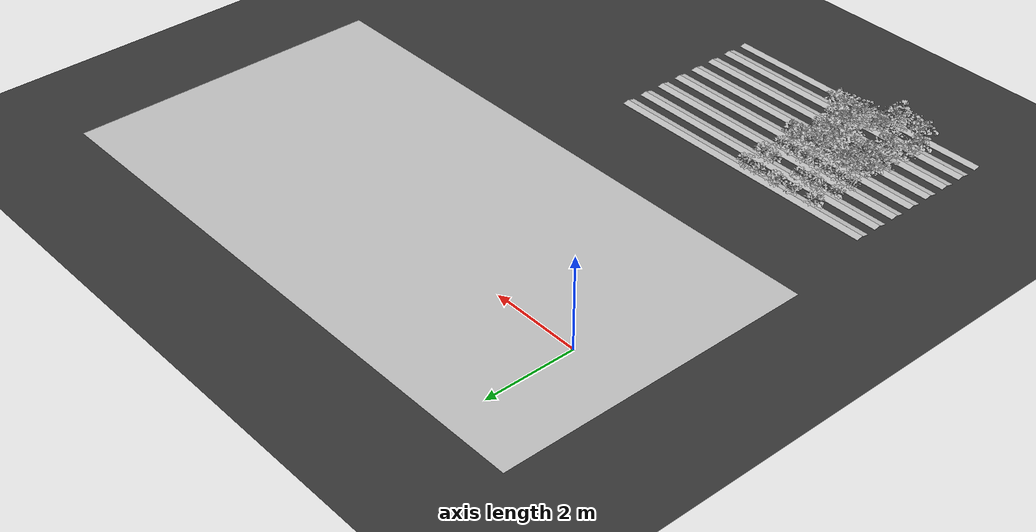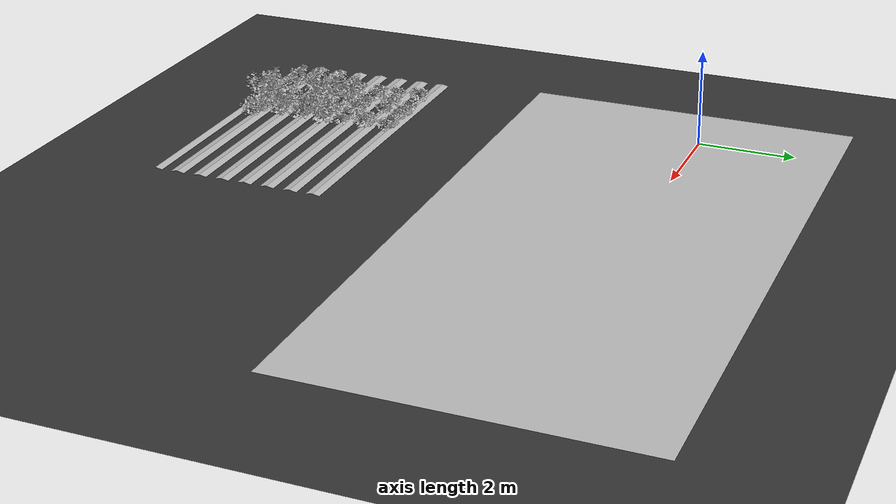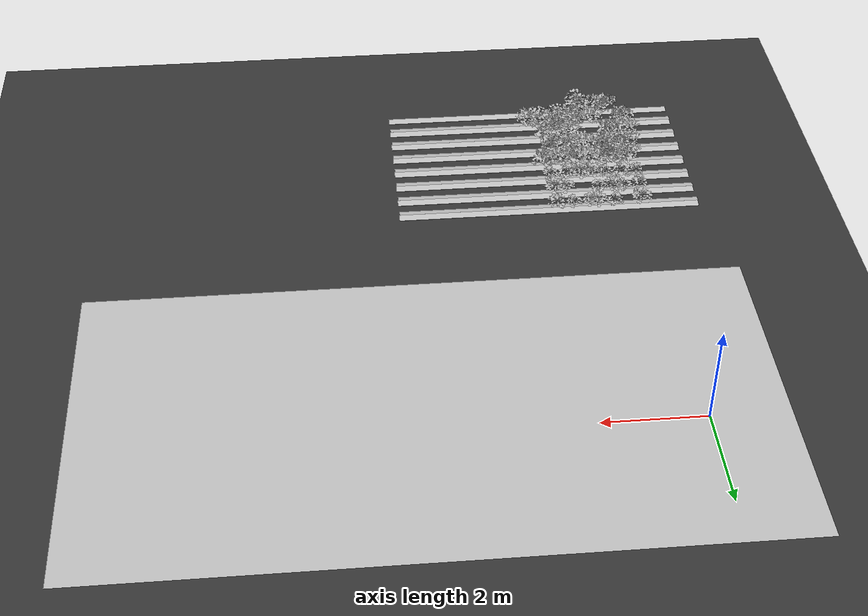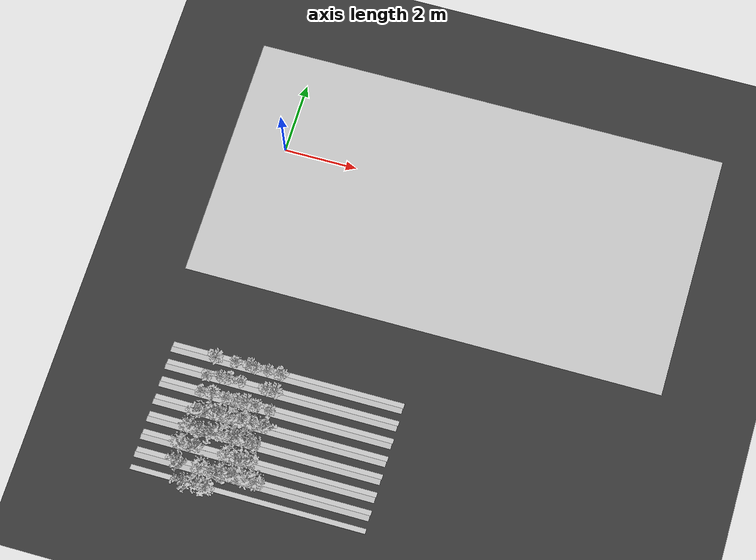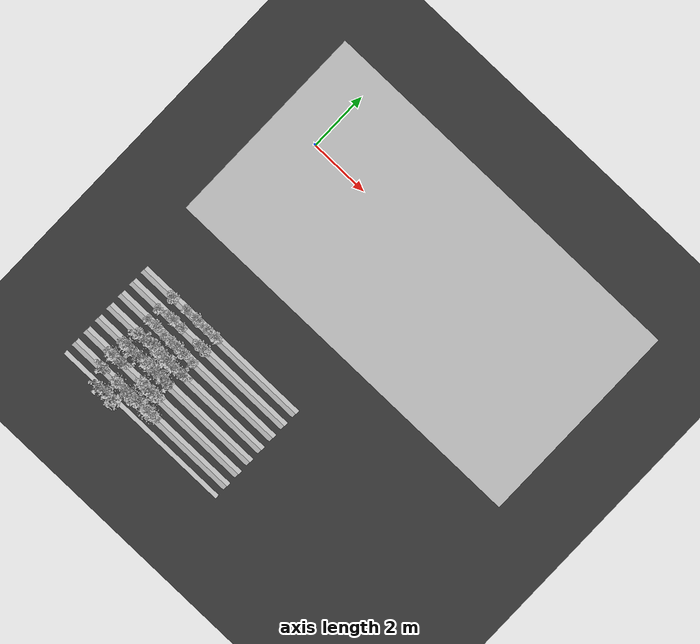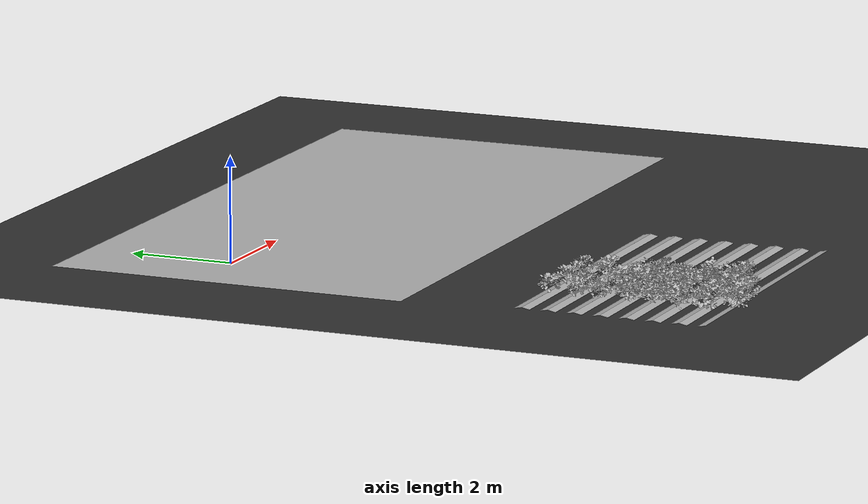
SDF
<sdf version="1.7">
 <world name="default">
  <model name="ground_plane">
   <static>1</static>
   <link name="link">
    <collision name="collision">
     <geometry><plane><normal>0 0 1</normal><size>100 100</size></plane></geometry>
     <surface>
      <contact><collide_bitmask>65535</collide_bitmask></contact>
      <friction><ode><mu>100</mu><mu2>50</mu2></ode></friction>
     </surface>
    </collision>
    <visual name="visual">
     <cast_shadows>0</cast_shadows>
     <geometry><plane><normal>0 0 1</normal><size>100 100</size></plane></geometry>
     <material>
      <ambient>0.2 0.2 0.2 1.0</ambient>
      <diffuse>0.2 0.2 0.2 1.0</diffuse>
      <specular>0.2 0.2 0.2 1.0</specular>
      <emissive>0.2 0.2 0.2 1.0</emissive>
     </material>
    </visual>
   </link>
  </model>
  <model name="ground">
   <pose>5 -0.5 0.01  3.141592654 0 0</pose>
   <static>true</static>
   <link name="body">
    <visual name="visual">
     <cast_shadows>0</cast_shadows>
     <geometry>
      <mesh><uri>file:///home/ifcosta/final_ws/src/cnn_line/worlds/models/ground.obj</uri></mesh>
     </geometry>
    </visual>
   </link>
  </model>
  <model name="plt_20000">
   <pose>-0.0155 -7.25 0.0139 0.0 0.0 -1.8722</pose>
   <static>true</static>
   <link name="body">
    <visual name="visual">
     <geometry>
      <mesh><uri>file:///home/ifcosta/final_ws/src/cnn_line/worlds/models/plant20.obj</uri></mesh>
     </geometry>
    </visual>
   </link>
  </model>
  <model name="plt_20001">
   <pose>0.29 -7.23 0.0123 0.0 0.0 0.9943</pose>
   <static>true</static>
   <link name="body">
    <visual name="visual">
     <geometry>
      <mesh><uri>file:///home/ifcosta/final_ws/src/cnn_line/worlds/models/plant21.obj</uri></mesh>
     </geometry>
    </visual>
   </link>
  </model>
  <model name="plt_20002">
   <pose>0.662 -7.25 0.0135 0.0 0.0 -1.072</pose>
   <static>true</static>
   <link name="body">
    <visual name="visual">
     <geometry>
      <mesh><uri>file:///home/ifcosta/final_ws/src/cnn_line/worlds/models/plant20.obj</uri></mesh>
     </geometry>
    </visual>
   </link>
  </model>
  <model name="plt_20003">
   <pose>0.961 -7.27 0.0196 0.0 0.0 0.7189</pose>
   <static>true</static>
   <link name="body">
    <visual name="visual">
     <geometry>
      <mesh><uri>file:///home/ifcosta/final_ws/src/cnn_line/worlds/models/plant21.obj</uri></mesh>
     </geometry>
    </visual>
   </link>
  </model>
  <model name="plt_20004">
   <pose>1.19 -7.24 0.012 0.0 0.0 0.95856</pose>
   <static>true</static>
   <link name="body">
    <visual name="visual">
     <geometry>
      <mesh><uri>file:///home/ifcosta/final_ws/src/cnn_line/worlds/models/plant22.obj</uri></mesh>
     </geometry>
    </visual>
   </link>
  </model>
  <model name="plt_20005">
   <pose>1.48 -7.28 0.0138 0.0 0.0 1.5511</pose>
   <static>true</static>
   <link name="body">
    <visual name="visual">
     <geometry>
      <mesh><uri>file:///home/ifcosta/final_ws/src/cnn_line/worlds/models/plant21.obj</uri></mesh>
     </geometry>
    </visual>
   </link>
  </model>
  <model name="plt_20006">
   <pose>1.84 -7.27 0.0161 0.0 0.0 -1.0882</pose>
   <static>true</static>
   <link name="body">
    <visual name="visual">
     <geometry>
      <mesh><uri>file:///home/ifcosta/final_ws/src/cnn_line/worlds/models/plant20.obj</uri></mesh>
     </geometry>
    </visual>
   </link>
  </model>
  <model name="slope_1034">
   <pose>2.0 -7.25 -0.005 0.0 0.0 0.0</pose>
   <static>true</static>
   <link name="body">
    <visual name="visual">
     <geometry>
      <mesh><uri>file:///home/ifcosta/final_ws/src/cnn_line/worlds/models/slope.obj</uri></mesh>
     </geometry>
    </visual>
   </link>
  </model>
  <model name="slope_1134">
   <pose>2.0 -7.25 -0.005 0.0 0.0 3.1416</pose>
   <static>true</static>
   <link name="body">
    <visual name="visual">
     <geometry>
      <mesh><uri>file:///home/ifcosta/final_ws/src/cnn_line/worlds/models/slope.obj</uri></mesh>
     </geometry>
    </visual>
   </link>
  </model>
  <model name="plt_20034">
   <pose>-0.0142 -6.82 0.0136 0.0 0.0 -1.4093</pose>
   <static>true</static>
   <link name="body">
    <visual name="visual">
     <geometry>
      <mesh><uri>file:///home/ifcosta/final_ws/src/cnn_line/worlds/models/plant20.obj</uri></mesh>
     </geometry>
    </visual>
   </link>
  </model>
  <model name="plt_20035">
   <pose>0.339 -6.73 0.0136 0.0 0.0 -0.78925</pose>
   <static>true</static>
   <link name="body">
    <visual name="visual">
     <geometry>
      <mesh><uri>file:///home/ifcosta/final_ws/src/cnn_line/worlds/models/plant20.obj</uri></mesh>
     </geometry>
    </visual>
   </link>
  </model>
  <model name="plt_30035">
   <pose>0.339 -9.73 0.0136 0.0 0.0 0.74008</pose>
   <static>true</static>
   <link name="body">
    <visual name="visual">
     <geometry>
      <mesh><uri>file:///home/ifcosta/final_ws/src/cnn_line/worlds/models/plant33.obj</uri></mesh>
     </geometry>
    </visual>
   </link>
  </model>
  <model name="plt_20036">
   <pose>0.577 -6.73 0.0141 0.0 0.0 -1.4953</pose>
   <static>true</static>
   <link name="body">
    <visual name="visual">
     <geometry>
      <mesh><uri>file:///home/ifcosta/final_ws/src/cnn_line/worlds/models/plant21.obj</uri></mesh>
     </geometry>
    </visual>
   </link>
  </model>
  <model name="plt_30036">
   <pose>0.577 -9.73 0.0141 0.0 0.0 -0.1089</pose>
   <static>true</static>
   <link name="body">
    <visual name="visual">
     <geometry>
      <mesh><uri>file:///home/ifcosta/final_ws/src/cnn_line/worlds/models/plant35.obj</uri></mesh>
     </geometry>
    </visual>
   </link>
  </model>
  <model name="plt_20037">
   <pose>0.902 -6.74 0.0154 0.0 0.0 1.406</pose>
   <static>true</static>
   <link name="body">
    <visual name="visual">
     <geometry>
      <mesh><uri>file:///home/ifcosta/final_ws/src/cnn_line/worlds/models/plant20.obj</uri></mesh>
     </geometry>
    </visual>
   </link>
  </model>
  <model name="plt_30037">
   <pose>0.902 -9.74 0.0154 0.0 0.0 -1.074</pose>
   <static>true</static>
   <link name="body">
    <visual name="visual">
     <geometry>
      <mesh><uri>file:///home/ifcosta/final_ws/src/cnn_line/worlds/models/plant36.obj</uri></mesh>
     </geometry>
    </visual>
   </link>
  </model>
  <model name="plt_20039">
   <pose>1.59 -6.76 0.0153 0.0 0.0 0.21965</pose>
   <static>true</static>
   <link name="body">
    <visual name="visual">
     <geometry>
      <mesh><uri>file:///home/ifcosta/final_ws/src/cnn_line/worlds/models/plant21.obj</uri></mesh>
     </geometry>
    </visual>
   </link>
  </model>
  <model name="plt_20040">
   <pose>1.82 -6.75 0.0142 0.0 0.0 0.78952</pose>
   <static>true</static>
   <link name="body">
    <visual name="visual">
     <geometry>
      <mesh><uri>file:///home/ifcosta/final_ws/src/cnn_line/worlds/models/plant22.obj</uri></mesh>
     </geometry>
    </visual>
   </link>
  </model>
  <model name="slope_1068">
   <pose>2.0 -6.75 -0.005 0.0 0.0 0.0</pose>
   <static>true</static>
   <link name="body">
    <visual name="visual">
     <geometry>
      <mesh><uri>file:///home/ifcosta/final_ws/src/cnn_line/worlds/models/slope.obj</uri></mesh>
     </geometry>
    </visual>
   </link>
  </model>
  <model name="slope_1168">
   <pose>2.0 -6.75 -0.005 0.0 0.0 3.1416</pose>
   <static>true</static>
   <link name="body">
    <visual name="visual">
     <geometry>
      <mesh><uri>file:///home/ifcosta/final_ws/src/cnn_line/worlds/models/slope.obj</uri></mesh>
     </geometry>
    </visual>
   </link>
  </model>
  <model name="slope_1568">
   <pose>2.0 -9.75 -0.005 0.0 0.0 3.1416</pose>
   <static>true</static>
   <link name="body">
    <visual name="visual">
     <geometry>
      <mesh><uri>file:///home/ifcosta/final_ws/src/cnn_line/worlds/models/slope.obj</uri></mesh>
     </geometry>
    </visual>
   </link>
  </model>
  <model name="plt_20068">
   <pose>0.0498 -6.26 0.0142 0.0 0.0 0.49213</pose>
   <static>true</static>
   <link name="body">
    <visual name="visual">
     <geometry>
      <mesh><uri>file:///home/ifcosta/final_ws/src/cnn_line/worlds/models/plant22.obj</uri></mesh>
     </geometry>
    </visual>
   </link>
  </model>
  <model name="plt_30068">
   <pose>0.0498 -9.26 0.0142 0.0 0.0 0.35871</pose>
   <static>true</static>
   <link name="body">
    <visual name="visual">
     <geometry>
      <mesh><uri>file:///home/ifcosta/final_ws/src/cnn_line/worlds/models/plant33.obj</uri></mesh>
     </geometry>
    </visual>
   </link>
  </model>
  <model name="plt_20070">
   <pose>0.612 -6.26 0.0137 0.0 0.0 0.57161</pose>
   <static>true</static>
   <link name="body">
    <visual name="visual">
     <geometry>
      <mesh><uri>file:///home/ifcosta/final_ws/src/cnn_line/worlds/models/plant20.obj</uri></mesh>
     </geometry>
    </visual>
   </link>
  </model>
  <model name="plt_30070">
   <pose>0.612 -9.26 0.0137 0.0 0.0 -1.3715</pose>
   <static>true</static>
   <link name="body">
    <visual name="visual">
     <geometry>
      <mesh><uri>file:///home/ifcosta/final_ws/src/cnn_line/worlds/models/plant35.obj</uri></mesh>
     </geometry>
    </visual>
   </link>
  </model>
  <model name="plt_20071">
   <pose>0.981 -6.24 0.0156 0.0 0.0 0.35679</pose>
   <static>true</static>
   <link name="body">
    <visual name="visual">
     <geometry>
      <mesh><uri>file:///home/ifcosta/final_ws/src/cnn_line/worlds/models/plant21.obj</uri></mesh>
     </geometry>
    </visual>
   </link>
  </model>
  <model name="plt_30071">
   <pose>0.981 -9.24 0.0156 0.0 0.0 1.1473</pose>
   <static>true</static>
   <link name="body">
    <visual name="visual">
     <geometry>
      <mesh><uri>file:///home/ifcosta/final_ws/src/cnn_line/worlds/models/plant34.obj</uri></mesh>
     </geometry>
    </visual>
   </link>
  </model>
  <model name="plt_20072">
   <pose>1.13 -6.27 0.0126 0.0 0.0 -0.74189</pose>
   <static>true</static>
   <link name="body">
    <visual name="visual">
     <geometry>
      <mesh><uri>file:///home/ifcosta/final_ws/src/cnn_line/worlds/models/plant20.obj</uri></mesh>
     </geometry>
    </visual>
   </link>
  </model>
  <model name="plt_30072">
   <pose>1.13 -9.27 0.0126 0.0 0.0 -0.25701</pose>
   <static>true</static>
   <link name="body">
    <visual name="visual">
     <geometry>
      <mesh><uri>file:///home/ifcosta/final_ws/src/cnn_line/worlds/models/plant35.obj</uri></mesh>
     </geometry>
    </visual>
   </link>
  </model>
  <model name="plt_20073">
   <pose>1.48 -6.24 0.0167 0.0 0.0 -0.85016</pose>
   <static>true</static>
   <link name="body">
    <visual name="visual">
     <geometry>
      <mesh><uri>file:///home/ifcosta/final_ws/src/cnn_line/worlds/models/plant20.obj</uri></mesh>
     </geometry>
    </visual>
   </link>
  </model>
  <model name="plt_30073">
   <pose>1.48 -9.24 0.0167 0.0 0.0 1.6403</pose>
   <static>true</static>
   <link name="body">
    <visual name="visual">
     <geometry>
      <mesh><uri>file:///home/ifcosta/final_ws/src/cnn_line/worlds/models/plant36.obj</uri></mesh>
     </geometry>
    </visual>
   </link>
  </model>
  <model name="plt_20074">
   <pose>1.84 -6.24 0.0138 0.0 0.0 -0.93682</pose>
   <static>true</static>
   <link name="body">
    <visual name="visual">
     <geometry>
      <mesh><uri>file:///home/ifcosta/final_ws/src/cnn_line/worlds/models/plant21.obj</uri></mesh>
     </geometry>
    </visual>
   </link>
  </model>
  <model name="plt_30074">
   <pose>1.84 -9.24 0.0138 0.0 0.0 2.4186</pose>
   <static>true</static>
   <link name="body">
    <visual name="visual">
     <geometry>
      <mesh><uri>file:///home/ifcosta/final_ws/src/cnn_line/worlds/models/plant32.obj</uri></mesh>
     </geometry>
    </visual>
   </link>
  </model>
  <model name="plt_30075">
   <pose>2.07 -9.25 0.0153 0.0 0.0 -1.616</pose>
   <static>true</static>
   <link name="body">
    <visual name="visual">
     <geometry>
      <mesh><uri>file:///home/ifcosta/final_ws/src/cnn_line/worlds/models/plant35.obj</uri></mesh>
     </geometry>
    </visual>
   </link>
  </model>
  <model name="slope_1102">
   <pose>2.0 -6.25 -0.005 0.0 0.0 0.0</pose>
   <static>true</static>
   <link name="body">
    <visual name="visual">
     <geometry>
      <mesh><uri>file:///home/ifcosta/final_ws/src/cnn_line/worlds/models/slope.obj</uri></mesh>
     </geometry>
    </visual>
   </link>
  </model>
  <model name="slope_1202">
   <pose>2.0 -6.25 -0.005 0.0 0.0 3.1416</pose>
   <static>true</static>
   <link name="body">
    <visual name="visual">
     <geometry>
      <mesh><uri>file:///home/ifcosta/final_ws/src/cnn_line/worlds/models/slope.obj</uri></mesh>
     </geometry>
    </visual>
   </link>
  </model>
  <model name="slope_1502">
   <pose>2.0 -9.25 -0.005 0.0 0.0 0.0</pose>
   <static>true</static>
   <link name="body">
    <visual name="visual">
     <geometry>
      <mesh><uri>file:///home/ifcosta/final_ws/src/cnn_line/worlds/models/slope.obj</uri></mesh>
     </geometry>
    </visual>
   </link>
  </model>
  <model name="slope_1602">
   <pose>2.0 -9.25 -0.005 0.0 0.0 3.1416</pose>
   <static>true</static>
   <link name="body">
    <visual name="visual">
     <geometry>
      <mesh><uri>file:///home/ifcosta/final_ws/src/cnn_line/worlds/models/slope.obj</uri></mesh>
     </geometry>
    </visual>
   </link>
  </model>
  <model name="plt_30102">
   <pose>-0.0664 -8.78 0.0167 0.0 0.0 -0.27487</pose>
   <static>true</static>
   <link name="body">
    <visual name="visual">
     <geometry>
      <mesh><uri>file:///home/ifcosta/final_ws/src/cnn_line/worlds/models/plant35.obj</uri></mesh>
     </geometry>
    </visual>
   </link>
  </model>
  <model name="plt_30103">
   <pose>0.262 -8.74 0.0141 0.0 0.0 -2.2081</pose>
   <static>true</static>
   <link name="body">
    <visual name="visual">
     <geometry>
      <mesh><uri>file:///home/ifcosta/final_ws/src/cnn_line/worlds/models/plant33.obj</uri></mesh>
     </geometry>
    </visual>
   </link>
  </model>
  <model name="plt_30106">
   <pose>1.2 -8.75 0.0172 0.0 0.0 -0.78477</pose>
   <static>true</static>
   <link name="body">
    <visual name="visual">
     <geometry>
      <mesh><uri>file:///home/ifcosta/final_ws/src/cnn_line/worlds/models/plant32.obj</uri></mesh>
     </geometry>
    </visual>
   </link>
  </model>
  <model name="plt_30107">
   <pose>1.52 -8.8 0.0153 0.0 0.0 -0.06589</pose>
   <static>true</static>
   <link name="body">
    <visual name="visual">
     <geometry>
      <mesh><uri>file:///home/ifcosta/final_ws/src/cnn_line/worlds/models/plant30.obj</uri></mesh>
     </geometry>
    </visual>
   </link>
  </model>
  <model name="plt_30108">
   <pose>1.79 -8.76 0.0176 0.0 0.0 0.37174</pose>
   <static>true</static>
   <link name="body">
    <visual name="visual">
     <geometry>
      <mesh><uri>file:///home/ifcosta/final_ws/src/cnn_line/worlds/models/plant31.obj</uri></mesh>
     </geometry>
    </visual>
   </link>
  </model>
  <model name="slope_1536">
   <pose>2.0 -8.75 -0.005 0.0 0.0 0.0</pose>
   <static>true</static>
   <link name="body">
    <visual name="visual">
     <geometry>
      <mesh><uri>file:///home/ifcosta/final_ws/src/cnn_line/worlds/models/slope.obj</uri></mesh>
     </geometry>
    </visual>
   </link>
  </model>
  <model name="slope_1636">
   <pose>2.0 -8.75 -0.005 0.0 0.0 3.1416</pose>
   <static>true</static>
   <link name="body">
    <visual name="visual">
     <geometry>
      <mesh><uri>file:///home/ifcosta/final_ws/src/cnn_line/worlds/models/slope.obj</uri></mesh>
     </geometry>
    </visual>
   </link>
  </model>
  <model name="plt_30136">
   <pose>0.0107 -8.26 0.0145 0.0 0.0 1.6839</pose>
   <static>true</static>
   <link name="body">
    <visual name="visual">
     <geometry>
      <mesh><uri>file:///home/ifcosta/final_ws/src/cnn_line/worlds/models/plant35.obj</uri></mesh>
     </geometry>
    </visual>
   </link>
  </model>
  <model name="plt_30137">
   <pose>0.332 -8.28 0.0125 0.0 0.0 -1.2263</pose>
   <static>true</static>
   <link name="body">
    <visual name="visual">
     <geometry>
      <mesh><uri>file:///home/ifcosta/final_ws/src/cnn_line/worlds/models/plant34.obj</uri></mesh>
     </geometry>
    </visual>
   </link>
  </model>
  <model name="plt_30138">
   <pose>0.586 -8.21 0.0165 0.0 0.0 0.4198</pose>
   <static>true</static>
   <link name="body">
    <visual name="visual">
     <geometry>
      <mesh><uri>file:///home/ifcosta/final_ws/src/cnn_line/worlds/models/plant34.obj</uri></mesh>
     </geometry>
    </visual>
   </link>
  </model>
  <model name="plt_30139">
   <pose>0.865 -8.23 0.0166 0.0 0.0 0.30085</pose>
   <static>true</static>
   <link name="body">
    <visual name="visual">
     <geometry>
      <mesh><uri>file:///home/ifcosta/final_ws/src/cnn_line/worlds/models/plant32.obj</uri></mesh>
     </geometry>
    </visual>
   </link>
  </model>
  <model name="plt_30140">
   <pose>1.18 -8.24 0.0134 0.0 0.0 -1.917</pose>
   <static>true</static>
   <link name="body">
    <visual name="visual">
     <geometry>
      <mesh><uri>file:///home/ifcosta/final_ws/src/cnn_line/worlds/models/plant33.obj</uri></mesh>
     </geometry>
    </visual>
   </link>
  </model>
  <model name="plt_30141">
   <pose>1.53 -8.22 0.0144 0.0 0.0 0.3999</pose>
   <static>true</static>
   <link name="body">
    <visual name="visual">
     <geometry>
      <mesh><uri>file:///home/ifcosta/final_ws/src/cnn_line/worlds/models/plant35.obj</uri></mesh>
     </geometry>
    </visual>
   </link>
  </model>
  <model name="plt_30142">
   <pose>1.77 -8.25 0.0133 0.0 0.0 -0.66527</pose>
   <static>true</static>
   <link name="body">
    <visual name="visual">
     <geometry>
      <mesh><uri>file:///home/ifcosta/final_ws/src/cnn_line/worlds/models/plant34.obj</uri></mesh>
     </geometry>
    </visual>
   </link>
  </model>
  <model name="slope_1570">
   <pose>2.0 -8.25 -0.005 0.0 0.0 0.0</pose>
   <static>true</static>
   <link name="body">
    <visual name="visual">
     <geometry>
      <mesh><uri>file:///home/ifcosta/final_ws/src/cnn_line/worlds/models/slope.obj</uri></mesh>
     </geometry>
    </visual>
   </link>
  </model>
  <model name="slope_1670">
   <pose>2.0 -8.25 -0.005 0.0 0.0 3.1416</pose>
   <static>true</static>
   <link name="body">
    <visual name="visual">
     <geometry>
      <mesh><uri>file:///home/ifcosta/final_ws/src/cnn_line/worlds/models/slope.obj</uri></mesh>
     </geometry>
    </visual>
   </link>
  </model>
  <model name="plt_30170">
   <pose>0.0793 -7.79 0.0149 0.0 0.0 0.061662</pose>
   <static>true</static>
   <link name="body">
    <visual name="visual">
     <geometry>
      <mesh><uri>file:///home/ifcosta/final_ws/src/cnn_line/worlds/models/plant31.obj</uri></mesh>
     </geometry>
    </visual>
   </link>
  </model>
  <model name="plt_30171">
   <pose>0.334 -7.74 0.00981 0.0 0.0 -2.1189</pose>
   <static>true</static>
   <link name="body">
    <visual name="visual">
     <geometry>
      <mesh><uri>file:///home/ifcosta/final_ws/src/cnn_line/worlds/models/plant33.obj</uri></mesh>
     </geometry>
    </visual>
   </link>
  </model>
  <model name="plt_30172">
   <pose>0.592 -7.73 0.0162 0.0 0.0 0.50952</pose>
   <static>true</static>
   <link name="body">
    <visual name="visual">
     <geometry>
      <mesh><uri>file:///home/ifcosta/final_ws/src/cnn_line/worlds/models/plant36.obj</uri></mesh>
     </geometry>
    </visual>
   </link>
  </model>
  <model name="plt_30173">
   <pose>0.897 -7.74 0.0182 0.0 0.0 0.057879</pose>
   <static>true</static>
   <link name="body">
    <visual name="visual">
     <geometry>
      <mesh><uri>file:///home/ifcosta/final_ws/src/cnn_line/worlds/models/plant32.obj</uri></mesh>
     </geometry>
    </visual>
   </link>
  </model>
  <model name="plt_30174">
   <pose>1.27 -7.76 0.0171 0.0 0.0 2.0596</pose>
   <static>true</static>
   <link name="body">
    <visual name="visual">
     <geometry>
      <mesh><uri>file:///home/ifcosta/final_ws/src/cnn_line/worlds/models/plant36.obj</uri></mesh>
     </geometry>
    </visual>
   </link>
  </model>
  <model name="plt_30175">
   <pose>1.55 -7.77 0.0107 0.0 0.0 0.5348</pose>
   <static>true</static>
   <link name="body">
    <visual name="visual">
     <geometry>
      <mesh><uri>file:///home/ifcosta/final_ws/src/cnn_line/worlds/models/plant35.obj</uri></mesh>
     </geometry>
    </visual>
   </link>
  </model>
  <model name="plt_30176">
   <pose>1.81 -7.73 0.0169 0.0 0.0 2.0748</pose>
   <static>true</static>
   <link name="body">
    <visual name="visual">
     <geometry>
      <mesh><uri>file:///home/ifcosta/final_ws/src/cnn_line/worlds/models/plant34.obj</uri></mesh>
     </geometry>
    </visual>
   </link>
  </model>
  <model name="slope_1604">
   <pose>2.0 -7.75 -0.005 0.0 0.0 0.0</pose>
   <static>true</static>
   <link name="body">
    <visual name="visual">
     <geometry>
      <mesh><uri>file:///home/ifcosta/final_ws/src/cnn_line/worlds/models/slope.obj</uri></mesh>
     </geometry>
    </visual>
   </link>
  </model>
  <model name="slope_1704">
   <pose>2.0 -7.75 -0.005 0.0 0.0 3.1416</pose>
   <static>true</static>
   <link name="body">
    <visual name="visual">
     <geometry>
      <mesh><uri>file:///home/ifcosta/final_ws/src/cnn_line/worlds/models/slope.obj</uri></mesh>
     </geometry>
    </visual>
   </link>
  </model>
 </world>
</sdf>
